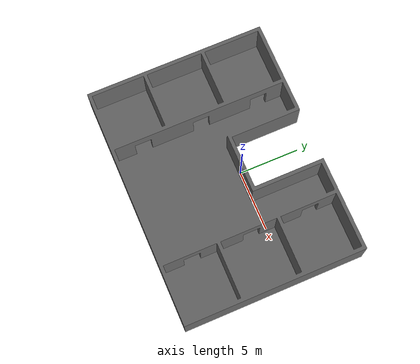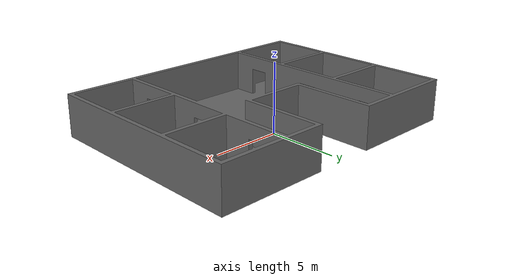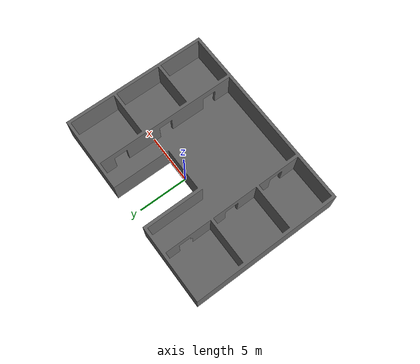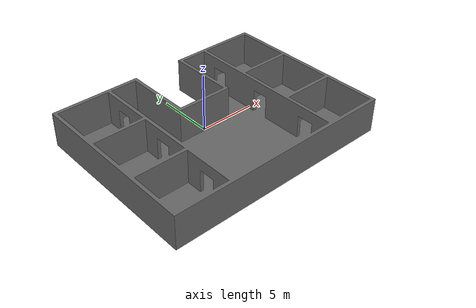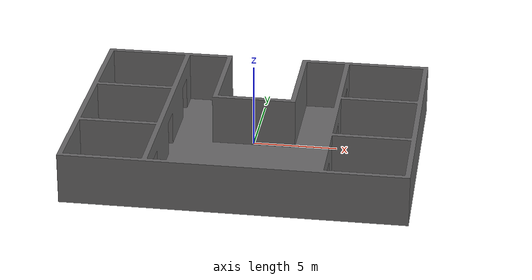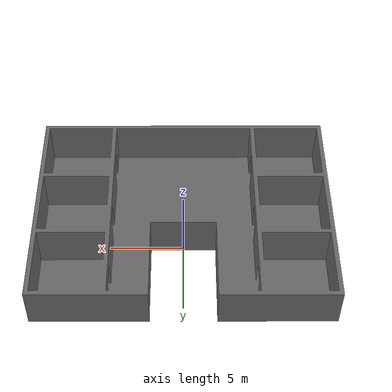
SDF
<?xml version="1.0"?>
<sdf version="1.10">
    <world name="hospital_world">
        <physics name="1ms" type="ignored">
            <max_step_size>0.001</max_step_size>
            <real_time_factor>1.0</real_time_factor>
        </physics>
        <plugin
            filename="gz-sim-physics-system"
            name="gz::sim::systems::Physics">
        </plugin>
        <plugin
            filename="gz-sim-user-commands-system"
            name="gz::sim::systems::UserCommands">
        </plugin>
        <plugin
            filename="gz-sim-scene-broadcaster-system"
            name="gz::sim::systems::SceneBroadcaster">
        </plugin>

        <light type="directional" name="sun">
            <cast_shadows>true</cast_shadows>
            <pose>0 0 10 0 0 0</pose>
            <diffuse>0.9 0.9 0.9 1</diffuse>
            <specular>0 0 0 1</specular>
            <attenuation>
                <range>1000</range>
                <constant>0.9</constant>
                <linear>0.01</linear>
                <quadratic>0.001</quadratic>
            </attenuation>
            <direction>-0.5 0.1 -0.9</direction>
        </light>
        <plugin filename="gz-sim-imu-system"
            name="gz::sim::systems::Imu">
        </plugin>
        <plugin
            filename="gz-sim-sensors-system"
            name="gz::sim::systems::Sensors">
            <render_engine>ogre2</render_engine>
        </plugin>
        <model name="hospital_world">
            <static>true</static>
            <link name="link">
                <visual name="visual">
                    <geometry>
                        <mesh>
                            <uri>meshes/hospital.glb</uri>
                        </mesh>
                    </geometry>
                </visual>
                <collision name="collision">
                    <geometry>
                        <mesh>
                            <uri>meshes/hospital.glb</uri>
                        </mesh>
                    </geometry>
                </collision>
            </link>
        </model>

    </world>

</sdf>
